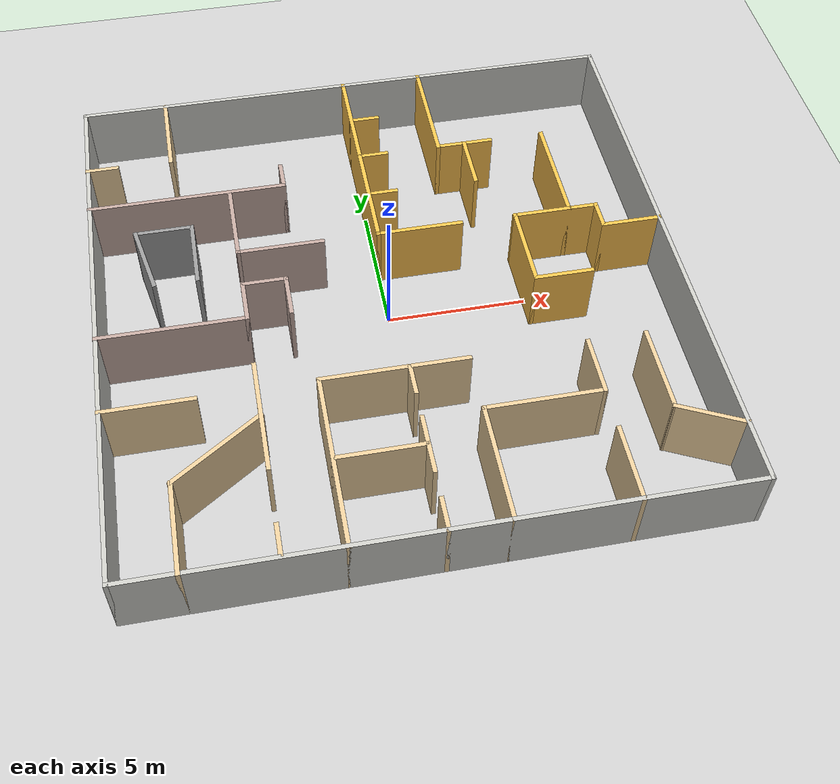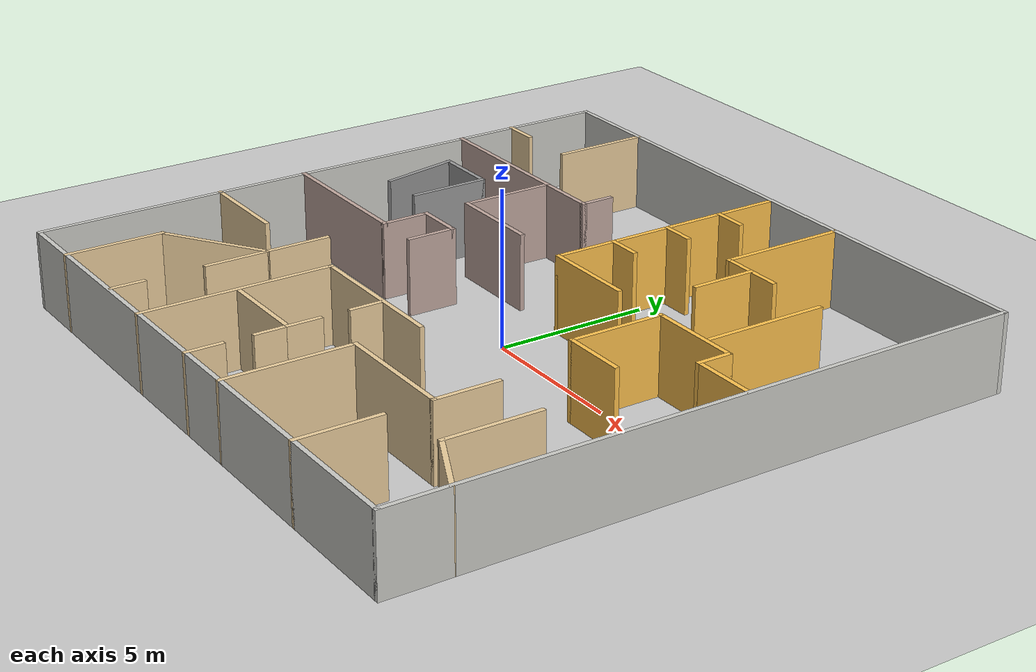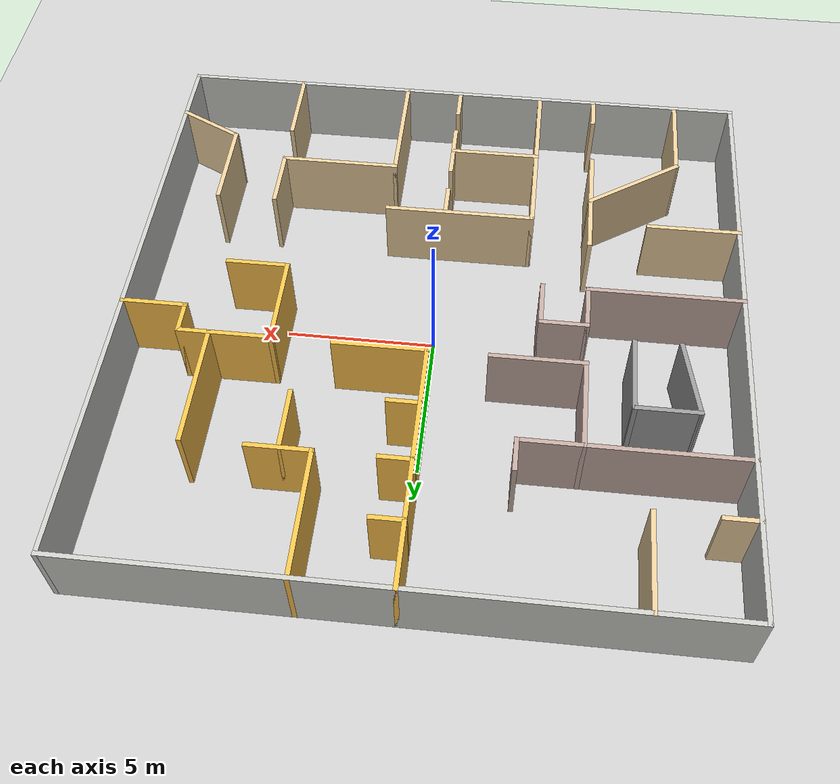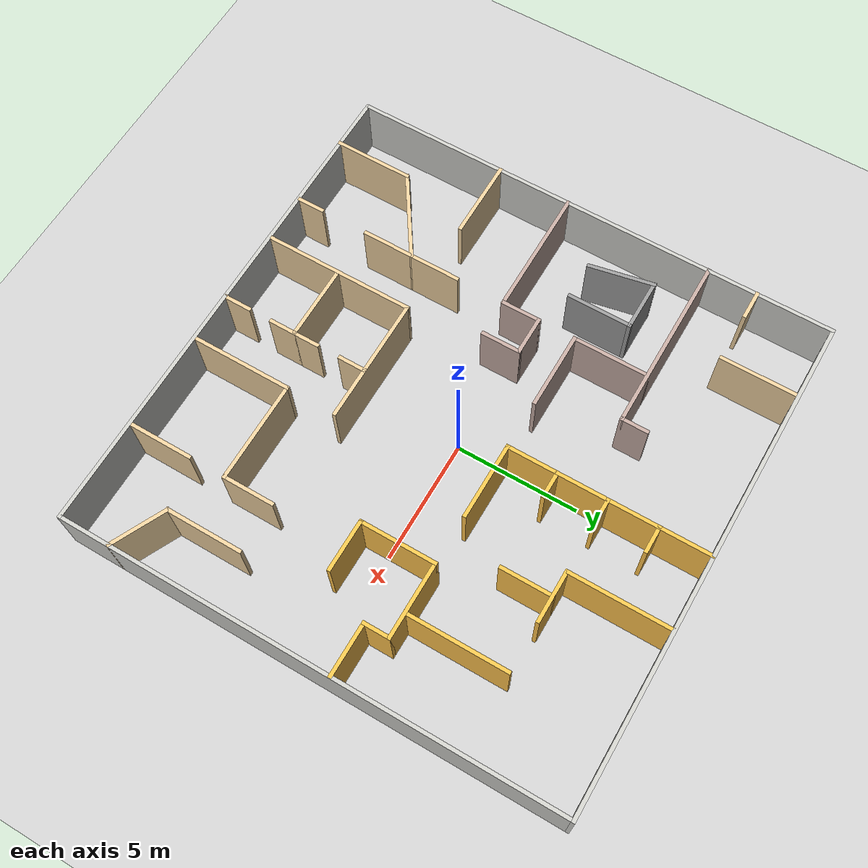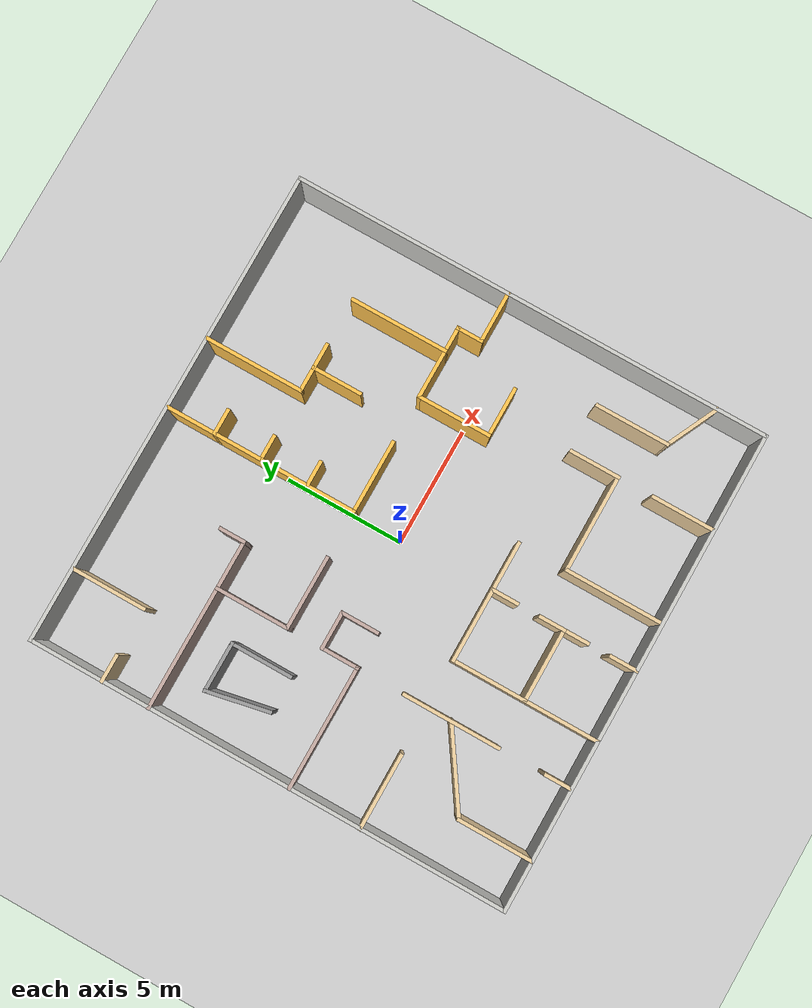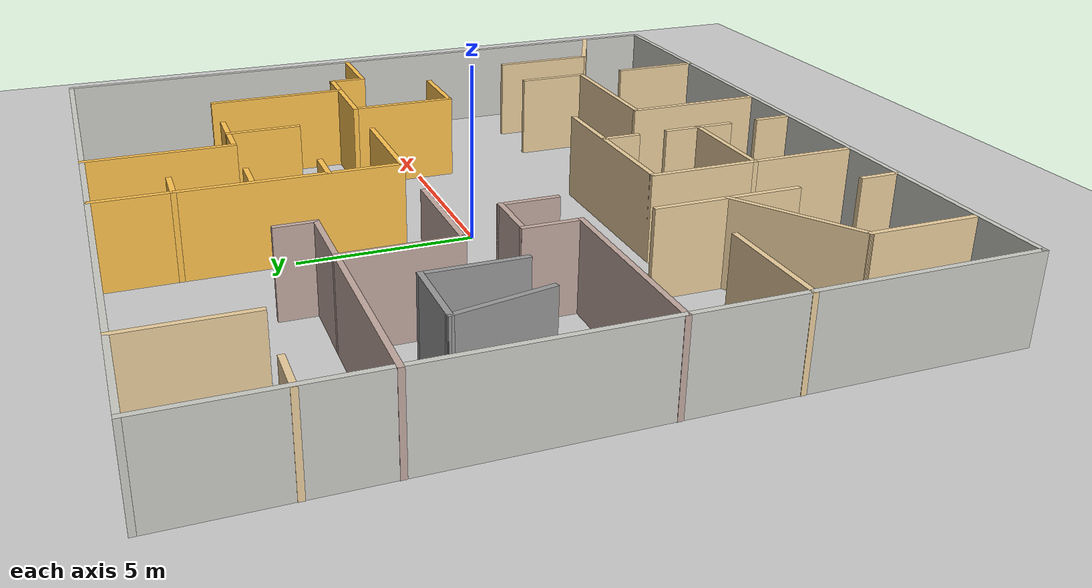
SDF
<sdf version="1.6">
 <world name="default">
  <light name="sun" type="directional">
   <pose>0 0 10 0 -0 0</pose>
   <diffuse>0.8 0.8 0.8 1</diffuse>
   <specular>0.2 0.2 0.2 1</specular>
   <attenuation>
    <range>1000</range>
    <constant>0.9</constant>
    <linear>0.01</linear>
    <quadratic>0.001</quadratic>
   </attenuation>
   <direction>-0.5 0.1 -0.9</direction>
  </light>
  <model name="ground_plane">
   <static>1</static>
   <link name="link">
    <collision name="collision">
     <geometry><plane><normal>0 0 1</normal><size>100 100</size></plane></geometry>
     <surface>
      <contact><collide_bitmask>65535</collide_bitmask></contact>
      <friction><ode><mu>100</mu><mu2>50</mu2></ode></friction>
     </surface>
    </collision>
    <visual name="visual">
     <cast_shadows>0</cast_shadows>
     <geometry><plane><normal>0 0 1</normal><size>100 100</size></plane></geometry>
     <material>
      <script><uri>file://media/materials/scripts/gazebo.material</uri><name>Gazebo/Grey</name></script>
     </material>
    </visual>
   </link>
  </model>
  <gravity>0 0 -9.8</gravity>
  <magnetic_field>6e-06 2.3e-05 -4.2e-05</magnetic_field>
  <atmosphere type="adiabatic"/>
  <physics name="default_physics" default="0" type="ode">
   <max_step_size>0.001</max_step_size>
   <real_time_factor>1</real_time_factor>
   <real_time_update_rate>1000</real_time_update_rate>
  </physics>
  <scene><ambient>0.4 0.4 0.4 1</ambient><background>0.7 0.7 0.7 1</background><shadows>1</shadows></scene>
  <audio><device>default</device></audio>
  <spherical_coordinates>
   <surface_model>EARTH_WGS84</surface_model>
   <latitude_deg>0</latitude_deg>
   <longitude_deg>0</longitude_deg>
   <elevation>0</elevation>
   <heading_deg>0</heading_deg>
  </spherical_coordinates>
  <model name="wall_in">
   <link name="Wall_10">
    <collision name="Wall_10_Collision">
     <geometry><box><size>3.15 0.15 2.5</size></box></geometry>
     <pose>0 0 1.25 0 -0 0</pose>
    </collision>
    <visual name="Wall_10_Visual">
     <pose>0 0 1.25 0 -0 0</pose>
     <geometry><box><size>3.15 0.15 2.5</size></box></geometry>
     <material>
      <script><uri>file://media/materials/scripts/gazebo.material</uri><name>Gazebo/Grey</name></script>
      <ambient>0.760784 0.662745 0.627451 1</ambient>
     </material>
     <meta><layer>0</layer></meta>
    </visual>
    <pose>-5.01256 3.5 0 0 -0 -1.5708</pose>
   </link>
   <link name="Wall_12">
    <collision name="Wall_12_Collision">
     <geometry><box><size>3.15 0.15 2.5</size></box></geometry>
     <pose>0 0 1.25 0 -0 0</pose>
    </collision>
    <visual name="Wall_12_Visual">
     <pose>0 0 1.25 0 -0 0</pose>
     <geometry><box><size>3.15 0.15 2.5</size></box></geometry>
     <material>
      <script><uri>file://media/materials/scripts/gazebo.material</uri><name>Gazebo/Grey</name></script>
      <ambient>0.760784 0.662745 0.627451 1</ambient>
     </material>
     <meta><layer>0</layer></meta>
    </visual>
    <pose>-3.51256 2 0 0 -0 0</pose>
   </link>
   <link name="Wall_14">
    <collision name="Wall_14_Collision">
     <geometry><box><size>2.65 0.15 2.5</size></box></geometry>
     <pose>0 0 1.25 0 -0 0</pose>
    </collision>
    <visual name="Wall_14_Visual">
     <pose>0 0 1.25 0 -0 0</pose>
     <geometry><box><size>2.65 0.15 2.5</size></box></geometry>
     <material>
      <script><uri>file://media/materials/scripts/gazebo.material</uri><name>Gazebo/Grey</name></script>
      <ambient>1 1 1 1</ambient>
     </material>
     <meta><layer>0</layer></meta>
    </visual>
    <pose>-6.51256 2.25 0 0 -0 1.5708</pose>
   </link>
   <link name="Wall_16">
    <collision name="Wall_16_Collision">
     <geometry><box><size>2.15 0.15 2.5</size></box></geometry>
     <pose>0 0 1.25 0 -0 0</pose>
    </collision>
    <visual name="Wall_16_Visual">
     <pose>0 0 1.25 0 -0 0</pose>
     <geometry><box><size>2.15 0.15 2.5</size></box></geometry>
     <material>
      <script><uri>file://media/materials/scripts/gazebo.material</uri><name>Gazebo/Grey</name></script>
      <ambient>1 1 1 1</ambient>
     </material>
     <meta><layer>0</layer></meta>
    </visual>
    <pose>-7.51256 3.5 0 0 -0 3.14159</pose>
   </link>
   <link name="Wall_17">
    <collision name="Wall_17_Collision">
     <geometry><box><size>2.69951 0.15 2.5</size></box></geometry>
     <pose>0 0 1.25 0 -0 0</pose>
    </collision>
    <visual name="Wall_17_Visual">
     <pose>0 0 1.25 0 -0 0</pose>
     <geometry><box><size>2.69951 0.15 2.5</size></box></geometry>
     <material>
      <script><uri>file://media/materials/scripts/gazebo.material</uri><name>Gazebo/Grey</name></script>
      <ambient>1 1 1 1</ambient>
     </material>
     <meta><layer>0</layer></meta>
    </visual>
    <pose>-8.26256 2.25 0 0 -0 -1.3734</pose>
   </link>
   <link name="Wall_19">
    <collision name="Wall_19_Collision">
     <geometry><box><size>5.225 0.15 2.5</size></box></geometry>
     <pose>0 0 1.25 0 -0 0</pose>
    </collision>
    <visual name="Wall_19_Visual">
     <pose>0 0 1.25 0 -0 0</pose>
     <geometry><box><size>5.225 0.15 2.5</size></box></geometry>
     <material>
      <script><uri>file://media/materials/scripts/gazebo.material</uri><name>Gazebo/Grey</name></script>
      <ambient>0.760784 0.662745 0.627451 1</ambient>
     </material>
     <meta><layer>0</layer></meta>
    </visual>
    <pose>-7.55006 -1 0 0 -0 0</pose>
   </link>
   <link name="Wall_2">
    <collision name="Wall_2_Collision">
     <geometry><box><size>3.225 0.15 2.5</size></box></geometry>
     <pose>0 0 1.25 0 -0 0</pose>
    </collision>
    <visual name="Wall_2_Visual">
     <pose>0 0 1.25 0 -0 0</pose>
     <geometry><box><size>3.225 0.15 2.5</size></box></geometry>
     <material>
      <script><uri>file://media/materials/scripts/gazebo.material</uri><name>Gazebo/Grey</name></script>
      <ambient>0.921569 0.807843 0.615686 1</ambient>
     </material>
     <meta><layer>0</layer></meta>
    </visual>
    <pose>-7.01256 8.5375 0 0 -0 -1.5708</pose>
   </link>
   <link name="Wall_21">
    <collision name="Wall_21_Collision">
     <geometry><box><size>1.65 0.15 2.5</size></box></geometry>
     <pose>0 0 1.25 0 -0 0</pose>
    </collision>
    <visual name="Wall_21_Visual">
     <pose>0 0 1.25 0 -0 0</pose>
     <geometry><box><size>1.65 0.15 2.5</size></box></geometry>
     <material>
      <script><uri>file://media/materials/scripts/gazebo.material</uri><name>Gazebo/Grey</name></script>
      <ambient>0.760784 0.662745 0.627451 1</ambient>
     </material>
     <meta><layer>0</layer></meta>
    </visual>
    <pose>-5.01256 -0.25 0 0 -0 1.5708</pose>
   </link>
   <link name="Wall_23">
    <collision name="Wall_23_Collision">
     <geometry><box><size>1.65 0.15 2.5</size></box></geometry>
     <pose>0 0 1.25 0 -0 0</pose>
    </collision>
    <visual name="Wall_23_Visual">
     <pose>0 0 1.25 0 -0 0</pose>
     <geometry><box><size>1.65 0.15 2.5</size></box></geometry>
     <material>
      <script><uri>file://media/materials/scripts/gazebo.material</uri><name>Gazebo/Grey</name></script>
      <ambient>0.760784 0.662745 0.627451 1</ambient>
     </material>
     <meta><layer>0</layer></meta>
    </visual>
    <pose>-4.26256 0.5 0 0 -0 0</pose>
   </link>
   <link name="Wall_25">
    <collision name="Wall_25_Collision">
     <geometry><box><size>1.65 0.15 2.5</size></box></geometry>
     <pose>0 0 1.25 0 -0 0</pose>
    </collision>
    <visual name="Wall_25_Visual">
     <pose>0 0 1.25 0 -0 0</pose>
     <geometry><box><size>1.65 0.15 2.5</size></box></geometry>
     <material>
      <script><uri>file://media/materials/scripts/gazebo.material</uri><name>Gazebo/Grey</name></script>
      <ambient>0.760784 0.662745 0.627451 1</ambient>
     </material>
     <meta><layer>0</layer></meta>
    </visual>
    <pose>-3.51256 -0.25 0 0 -0 -1.5708</pose>
   </link>
   <link name="Wall_29">
    <collision name="Wall_29_Collision">
     <geometry><box><size>3.15 0.15 2.5</size></box></geometry>
     <pose>0 0 1.25 0 -0 0</pose>
    </collision>
    <visual name="Wall_29_Visual">
     <pose>0 0 1.25 0 -0 0</pose>
     <geometry><box><size>3.15 0.15 2.5</size></box></geometry>
     <material>
      <script><uri>file://media/materials/scripts/gazebo.material</uri><name>Gazebo/Grey</name></script>
      <ambient>1 0.764706 0.305882 1</ambient>
     </material>
     <meta><layer>0</layer></meta>
    </visual>
    <pose>1.48744 2 0 0 -0 0</pose>
   </link>
   <link name="Wall_31">
    <collision name="Wall_31_Collision">
     <geometry><box><size>3.15 0.15 2.5</size></box></geometry>
     <pose>0 0 1.25 0 -0 0</pose>
    </collision>
    <visual name="Wall_31_Visual">
     <pose>0 0 1.25 0 -0 0</pose>
     <geometry><box><size>3.15 0.15 2.5</size></box></geometry>
     <material>
      <script><uri>file://media/materials/scripts/gazebo.material</uri><name>Gazebo/Grey</name></script>
      <ambient>1 0.764706 0.305882 1</ambient>
     </material>
     <meta><layer>0</layer></meta>
    </visual>
    <pose>6.48744 2 0 0 -0 0</pose>
   </link>
   <link name="Wall_33">
    <collision name="Wall_33_Collision">
     <geometry><box><size>1.15 0.15 2.5</size></box></geometry>
     <pose>0 0 1.25 0 -0 0</pose>
    </collision>
    <visual name="Wall_33_Visual">
     <pose>0 0 1.25 0 -0 0</pose>
     <geometry><box><size>1.15 0.15 2.5</size></box></geometry>
     <material>
      <script><uri>file://media/materials/scripts/gazebo.material</uri><name>Gazebo/Grey</name></script>
      <ambient>1 0.764706 0.305882 1</ambient>
     </material>
     <meta><layer>0</layer></meta>
    </visual>
    <pose>7.98744 1.5 0 0 -0 -1.5708</pose>
   </link>
   <link name="Wall_35">
    <collision name="Wall_35_Collision">
     <geometry><box><size>2.225 0.15 2.5</size></box></geometry>
     <pose>0 0 1.25 0 -0 0</pose>
    </collision>
    <visual name="Wall_35_Visual">
     <pose>0 0 1.25 0 -0 0</pose>
     <geometry><box><size>2.225 0.15 2.5</size></box></geometry>
     <material>
      <script><uri>file://media/materials/scripts/gazebo.material</uri><name>Gazebo/Grey</name></script>
      <ambient>1 0.764706 0.305882 1</ambient>
     </material>
     <meta><layer>0</layer></meta>
    </visual>
    <pose>9.02494 1 0 0 -0 0</pose>
   </link>
   <link name="Wall_37">
    <collision name="Wall_37_Collision">
     <geometry><box><size>4.15 0.15 2.5</size></box></geometry>
     <pose>0 0 1.25 0 -0 0</pose>
    </collision>
    <visual name="Wall_37_Visual">
     <pose>0 0 1.25 0 -0 0</pose>
     <geometry><box><size>4.15 0.15 2.5</size></box></geometry>
     <material>
      <script><uri>file://media/materials/scripts/gazebo.material</uri><name>Gazebo/Grey</name></script>
      <ambient>1 0.764706 0.305882 1</ambient>
     </material>
     <meta><layer>0</layer></meta>
    </visual>
    <pose>6.98744 4 0 0 -0 1.5708</pose>
   </link>
   <link name="Wall_39">
    <collision name="Wall_39_Collision">
     <geometry><box><size>1.15 0.15 2.5</size></box></geometry>
     <pose>0 0 1.25 0 -0 0</pose>
    </collision>
    <visual name="Wall_39_Visual">
     <pose>0 0 1.25 0 -0 0</pose>
     <geometry><box><size>1.15 0.15 2.5</size></box></geometry>
     <material>
      <script><uri>file://media/materials/scripts/gazebo.material</uri><name>Gazebo/Grey</name></script>
      <ambient>1 0.764706 0.305882 1</ambient>
     </material>
     <meta><layer>0</layer></meta>
    </visual>
    <pose>0.487438 4 0 0 -0 0</pose>
   </link>
   <link name="Wall_4">
    <collision name="Wall_4_Collision">
     <geometry><box><size>1.225 0.15 2.5</size></box></geometry>
     <pose>0 0 1.25 0 -0 0</pose>
    </collision>
    <visual name="Wall_4_Visual">
     <pose>0 0 1.25 0 -0 0</pose>
     <geometry><box><size>1.225 0.15 2.5</size></box></geometry>
     <material>
      <script><uri>file://media/materials/scripts/gazebo.material</uri><name>Gazebo/Grey</name></script>
      <ambient>0.921569 0.807843 0.615686 1</ambient>
     </material>
     <meta><layer>0</layer></meta>
    </visual>
    <pose>-9.55006 7 0 0 -0 0</pose>
   </link>
   <link name="Wall_41">
    <collision name="Wall_41_Collision">
     <geometry><box><size>1.15 0.15 2.5</size></box></geometry>
     <pose>0 0 1.25 0 -0 0</pose>
    </collision>
    <visual name="Wall_41_Visual">
     <pose>0 0 1.25 0 -0 0</pose>
     <geometry><box><size>1.15 0.15 2.5</size></box></geometry>
     <material>
      <script><uri>file://media/materials/scripts/gazebo.material</uri><name>Gazebo/Grey</name></script>
      <ambient>1 0.764706 0.305882 1</ambient>
     </material>
     <meta><layer>0</layer></meta>
    </visual>
    <pose>0.487438 6 0 0 -0 0</pose>
   </link>
   <link name="Wall_43">
    <collision name="Wall_43_Collision">
     <geometry><box><size>1.15 0.15 2.5</size></box></geometry>
     <pose>0 0 1.25 0 -0 0</pose>
    </collision>
    <visual name="Wall_43_Visual">
     <pose>0 0 1.25 0 -0 0</pose>
     <geometry><box><size>1.15 0.15 2.5</size></box></geometry>
     <material>
      <script><uri>file://media/materials/scripts/gazebo.material</uri><name>Gazebo/Grey</name></script>
      <ambient>1 0.764706 0.305882 1</ambient>
     </material>
     <meta><layer>0</layer></meta>
    </visual>
    <pose>0.487438 8 0 0 -0 0</pose>
   </link>
   <link name="Wall_45">
    <collision name="Wall_45_Collision">
     <geometry><box><size>4.225 0.15 2.5</size></box></geometry>
     <pose>0 0 1.25 0 -0 0</pose>
    </collision>
    <visual name="Wall_45_Visual">
     <pose>0 0 1.25 0 -0 0</pose>
     <geometry><box><size>4.225 0.15 2.5</size></box></geometry>
     <material>
      <script><uri>file://media/materials/scripts/gazebo.material</uri><name>Gazebo/Grey</name></script>
      <ambient>1 0.764706 0.305882 1</ambient>
     </material>
     <meta><layer>0</layer></meta>
    </visual>
    <pose>2.98744 8.0375 0 0 -0 -1.5708</pose>
   </link>
   <link name="Wall_47">
    <collision name="Wall_47_Collision">
     <geometry><box><size>2.15 0.15 2.5</size></box></geometry>
     <pose>0 0 1.25 0 -0 0</pose>
    </collision>
    <visual name="Wall_47_Visual">
     <pose>0 0 1.25 0 -0 0</pose>
     <geometry><box><size>2.15 0.15 2.5</size></box></geometry>
     <material>
      <script><uri>file://media/materials/scripts/gazebo.material</uri><name>Gazebo/Grey</name></script>
      <ambient>1 0.764706 0.305882 1</ambient>
     </material>
     <meta><layer>0</layer></meta>
    </visual>
    <pose>3.98744 6 0 0 -0 0</pose>
   </link>
   <link name="Wall_49">
    <collision name="Wall_49_Collision">
     <geometry><box><size>2.15 0.15 2.5</size></box></geometry>
     <pose>0 0 1.25 0 -0 0</pose>
    </collision>
    <visual name="Wall_49_Visual">
     <pose>0 0 1.25 0 -0 0</pose>
     <geometry><box><size>2.15 0.15 2.5</size></box></geometry>
     <material>
      <script><uri>file://media/materials/scripts/gazebo.material</uri><name>Gazebo/Grey</name></script>
      <ambient>1 0.764706 0.305882 1</ambient>
     </material>
     <meta><layer>0</layer></meta>
    </visual>
    <pose>3.98744 5 0 0 -0 -1.5708</pose>
   </link>
   <link name="Wall_51">
    <collision name="Wall_51_Collision">
     <geometry><box><size>3.225 0.15 2.5</size></box></geometry>
     <pose>0 0 1.25 0 -0 0</pose>
    </collision>
    <visual name="Wall_51_Visual">
     <pose>0 0 1.25 0 -0 0</pose>
     <geometry><box><size>3.225 0.15 2.5</size></box></geometry>
     <material>
      <script><uri>file://media/materials/scripts/gazebo.material</uri><name>Gazebo/Grey</name></script>
      <ambient>0.921569 0.807843 0.615686 1</ambient>
     </material>
     <meta><layer>0</layer></meta>
    </visual>
    <pose>-8.55006 -4 0 0 -0 0</pose>
   </link>
   <link name="Wall_53">
    <collision name="Wall_53_Collision">
     <geometry><box><size>4.15 0.15 2.5</size></box></geometry>
     <pose>0 0 1.25 0 -0 0</pose>
    </collision>
    <visual name="Wall_53_Visual">
     <pose>0 0 1.25 0 -0 0</pose>
     <geometry><box><size>4.15 0.15 2.5</size></box></geometry>
     <material>
      <script><uri>file://media/materials/scripts/gazebo.material</uri><name>Gazebo/Grey</name></script>
      <ambient>0.921569 0.807843 0.615686 1</ambient>
     </material>
     <meta><layer>0</layer></meta>
    </visual>
    <pose>-5.01256 -5 0 0 -0 -1.5708</pose>
   </link>
   <link name="Wall_55">
    <collision name="Wall_55_Collision">
     <geometry><box><size>3.75555 0.15 2.5</size></box></geometry>
     <pose>0 0 1.25 0 -0 0</pose>
    </collision>
    <visual name="Wall_55_Visual">
     <pose>0 0 1.25 0 -0 0</pose>
     <geometry><box><size>3.75555 0.15 2.5</size></box></geometry>
     <material>
      <script><uri>file://media/materials/scripts/gazebo.material</uri><name>Gazebo/Grey</name></script>
      <ambient>0.921569 0.807843 0.615686 1</ambient>
     </material>
     <meta><layer>0</layer></meta>
    </visual>
    <pose>-6.51256 -6 0 0 -0 -2.55359</pose>
   </link>
   <link name="Wall_57">
    <collision name="Wall_57_Collision">
     <geometry><box><size>3.225 0.15 2.5</size></box></geometry>
     <pose>0 0 1.25 0 -0 0</pose>
    </collision>
    <visual name="Wall_57_Visual">
     <pose>0 0 1.25 0 -0 0</pose>
     <geometry><box><size>3.225 0.15 2.5</size></box></geometry>
     <material>
      <script><uri>file://media/materials/scripts/gazebo.material</uri><name>Gazebo/Grey</name></script>
      <ambient>0.921569 0.807843 0.615686 1</ambient>
     </material>
     <meta><layer>0</layer></meta>
    </visual>
    <pose>-8.01256 -8.5375 0 0 -0 -1.5708</pose>
   </link>
   <link name="Wall_59">
    <collision name="Wall_59_Collision">
     <geometry><box><size>1.15 0.15 2.5</size></box></geometry>
     <pose>0 0 1.25 0 -0 0</pose>
    </collision>
    <visual name="Wall_59_Visual">
     <pose>0 0 1.25 0 -0 0</pose>
     <geometry><box><size>1.15 0.15 2.5</size></box></geometry>
     <material>
      <script><uri>file://media/materials/scripts/gazebo.material</uri><name>Gazebo/Grey</name></script>
      <ambient>0.921569 0.807843 0.615686 1</ambient>
     </material>
     <meta><layer>0</layer></meta>
    </visual>
    <pose>-5.01256 -9.5 0 0 -0 1.5708</pose>
   </link>
   <link name="Wall_6">
    <collision name="Wall_6_Collision">
     <geometry><box><size>7.225 0.15 2.5</size></box></geometry>
     <pose>0 0 1.25 0 -0 0</pose>
    </collision>
    <visual name="Wall_6_Visual">
     <pose>0 0 1.25 0 -0 0</pose>
     <geometry><box><size>7.225 0.15 2.5</size></box></geometry>
     <material>
      <script><uri>file://media/materials/scripts/gazebo.material</uri><name>Gazebo/Grey</name></script>
      <ambient>0.760784 0.662745 0.627451 1</ambient>
     </material>
     <meta><layer>0</layer></meta>
    </visual>
    <pose>-6.55006 5 0 0 -0 0</pose>
   </link>
   <link name="Wall_61">
    <collision name="Wall_61_Collision">
     <geometry><box><size>1.15 0.15 2.5</size></box></geometry>
     <pose>0 0 1.25 0 -0 0</pose>
    </collision>
    <visual name="Wall_61_Visual">
     <pose>0 0 1.25 0 -0 0</pose>
     <geometry><box><size>1.15 0.15 2.5</size></box></geometry>
     <material>
      <script><uri>file://media/materials/scripts/gazebo.material</uri><name>Gazebo/Grey</name></script>
      <ambient>0.760784 0.662745 0.627451 1</ambient>
     </material>
     <meta><layer>0</layer></meta>
    </visual>
    <pose>-3.01256 5.5 0 0 -0 1.5708</pose>
   </link>
   <link name="Wall_63">
    <collision name="Wall_63_Collision">
     <geometry><box><size>6.26 0.15 2.5</size></box></geometry>
     <pose>0 0 1.25 0 -0 0</pose>
    </collision>
    <visual name="Wall_63_Visual">
     <pose>0 0 1.25 0 -0 0</pose>
     <geometry><box><size>6.26 0.15 2.5</size></box></geometry>
     <material>
      <script><uri>file://media/materials/scripts/gazebo.material</uri><name>Gazebo/Grey</name></script>
      <ambient>0.921569 0.807843 0.615686 1</ambient>
     </material>
     <meta><layer>0</layer></meta>
    </visual>
    <pose>-3.01256 -7.02 0 0 -0 1.5708</pose>
   </link>
   <link name="Wall_65">
    <collision name="Wall_65_Collision">
     <geometry><box><size>5.15 0.15 2.5</size></box></geometry>
     <pose>0 0 1.25 0 -0 0</pose>
    </collision>
    <visual name="Wall_65_Visual">
     <pose>0 0 1.25 0 -0 0</pose>
     <geometry><box><size>5.15 0.15 2.5</size></box></geometry>
     <material>
      <script><uri>file://media/materials/scripts/gazebo.material</uri><name>Gazebo/Grey</name></script>
      <ambient>0.921569 0.807843 0.615686 1</ambient>
     </material>
     <meta><layer>0</layer></meta>
    </visual>
    <pose>-0.512562 -3.965 0 0 -0 0</pose>
   </link>
   <link name="Wall_67">
    <collision name="Wall_67_Collision">
     <geometry><box><size>3.15 0.15 2.5</size></box></geometry>
     <pose>0 0 1.25 0 -0 0</pose>
    </collision>
    <visual name="Wall_67_Visual">
     <pose>0 0 1.25 0 -0 0</pose>
     <geometry><box><size>3.15 0.15 2.5</size></box></geometry>
     <material>
      <script><uri>file://media/materials/scripts/gazebo.material</uri><name>Gazebo/Grey</name></script>
      <ambient>0.921569 0.807843 0.615686 1</ambient>
     </material>
     <meta><layer>0</layer></meta>
    </visual>
    <pose>-1.51256 -7 0 0 -0 0</pose>
   </link>
   <link name="Wall_69">
    <collision name="Wall_69_Collision">
     <geometry><box><size>1.15 0.15 2.5</size></box></geometry>
     <pose>0 0 1.25 0 -0 0</pose>
    </collision>
    <visual name="Wall_69_Visual">
     <pose>0 0 1.25 0 -0 0</pose>
     <geometry><box><size>1.15 0.15 2.5</size></box></geometry>
     <material>
      <script><uri>file://media/materials/scripts/gazebo.material</uri><name>Gazebo/Grey</name></script>
      <ambient>0.921569 0.807843 0.615686 1</ambient>
     </material>
     <meta><layer>0</layer></meta>
    </visual>
    <pose>-0.012562 -7.5 0 0 -0 -1.5708</pose>
   </link>
   <link name="Wall_71">
    <collision name="Wall_71_Collision">
     <geometry><box><size>1.15 0.15 2.5</size></box></geometry>
     <pose>0 0 1.25 0 -0 0</pose>
    </collision>
    <visual name="Wall_71_Visual">
     <pose>0 0 1.25 0 -0 0</pose>
     <geometry><box><size>1.15 0.15 2.5</size></box></geometry>
     <material>
      <script><uri>file://media/materials/scripts/gazebo.material</uri><name>Gazebo/Grey</name></script>
      <ambient>0.921569 0.807843 0.615686 1</ambient>
     </material>
     <meta><layer>0</layer></meta>
    </visual>
    <pose>-0.012562 -6.5 0 0 -0 1.5708</pose>
   </link>
   <link name="Wall_73">
    <collision name="Wall_73_Collision">
     <geometry><box><size>1.15 0.15 2.5</size></box></geometry>
     <pose>0 0 1.25 0 -0 0</pose>
    </collision>
    <visual name="Wall_73_Visual">
     <pose>0 0 1.25 0 -0 0</pose>
     <geometry><box><size>1.15 0.15 2.5</size></box></geometry>
     <material>
      <script><uri>file://media/materials/scripts/gazebo.material</uri><name>Gazebo/Grey</name></script>
      <ambient>0.921569 0.807843 0.615686 1</ambient>
     </material>
     <meta><layer>0</layer></meta>
    </visual>
    <pose>-0.012562 -4.5 0 0 -0 -1.5708</pose>
   </link>
   <link name="Wall_75">
    <collision name="Wall_75_Collision">
     <geometry><box><size>1.225 0.15 2.5</size></box></geometry>
     <pose>0 0 1.25 0 -0 0</pose>
    </collision>
    <visual name="Wall_75_Visual">
     <pose>0 0 1.25 0 -0 0</pose>
     <geometry><box><size>1.225 0.15 2.5</size></box></geometry>
     <material>
      <script><uri>file://media/materials/scripts/gazebo.material</uri><name>Gazebo/Grey</name></script>
      <ambient>0.921569 0.807843 0.615686 1</ambient>
     </material>
     <meta><layer>0</layer></meta>
    </visual>
    <pose>-0.012562 -9.5375 0 0 -0 1.5708</pose>
   </link>
   <link name="Wall_77">
    <collision name="Wall_77_Collision">
     <geometry><box><size>4.225 0.15 2.5</size></box></geometry>
     <pose>0 0 1.25 0 -0 0</pose>
    </collision>
    <visual name="Wall_77_Visual">
     <pose>0 0 1.25 0 -0 0</pose>
     <geometry><box><size>4.225 0.15 2.5</size></box></geometry>
     <material>
      <script><uri>file://media/materials/scripts/gazebo.material</uri><name>Gazebo/Grey</name></script>
      <ambient>0.921569 0.807843 0.615686 1</ambient>
     </material>
     <meta><layer>0</layer></meta>
    </visual>
    <pose>1.98744 -8.0375 0 0 -0 1.5708</pose>
   </link>
   <link name="Wall_79">
    <collision name="Wall_79_Collision">
     <geometry><box><size>4.15 0.15 2.5</size></box></geometry>
     <pose>0 0 1.25 0 -0 0</pose>
    </collision>
    <visual name="Wall_79_Visual">
     <pose>0 0 1.25 0 -0 0</pose>
     <geometry><box><size>4.15 0.15 2.5</size></box></geometry>
     <material>
      <script><uri>file://media/materials/scripts/gazebo.material</uri><name>Gazebo/Grey</name></script>
      <ambient>0.921569 0.807843 0.615686 1</ambient>
     </material>
     <meta><layer>0</layer></meta>
    </visual>
    <pose>3.98744 -6 0 0 -0 0</pose>
   </link>
   <link name="Wall_8">
    <collision name="Wall_8_Collision">
     <geometry><box><size>8.225 0.15 2.5</size></box></geometry>
     <pose>0 0 1.25 0 -0 0</pose>
    </collision>
    <visual name="Wall_8_Visual">
     <pose>0 0 1.25 0 -0 0</pose>
     <geometry><box><size>8.225 0.15 2.5</size></box></geometry>
     <material>
      <script><uri>file://media/materials/scripts/gazebo.material</uri><name>Gazebo/Grey</name></script>
      <ambient>1 0.764706 0.305882 1</ambient>
     </material>
     <meta><layer>0</layer></meta>
    </visual>
    <pose>-0.012562 6.0375 0 0 -0 -1.5708</pose>
   </link>
   <link name="Wall_81">
    <collision name="Wall_81_Collision">
     <geometry><box><size>2.725 0.15 2.5</size></box></geometry>
     <pose>0 0 1.25 0 -0 0</pose>
    </collision>
    <visual name="Wall_81_Visual">
     <pose>0 0 1.25 0 -0 0</pose>
     <geometry><box><size>2.725 0.15 2.5</size></box></geometry>
     <material>
      <script><uri>file://media/materials/scripts/gazebo.material</uri><name>Gazebo/Grey</name></script>
      <ambient>0.921569 0.807843 0.615686 1</ambient>
     </material>
     <meta><layer>0</layer></meta>
    </visual>
    <pose>5.98744 -8.7875 0 0 -0 1.5708</pose>
   </link>
   <link name="Wall_83">
    <collision name="Wall_83_Collision">
     <geometry><box><size>2.45339 0.15 2.5</size></box></geometry>
     <pose>0 0 1.25 0 -0 0</pose>
    </collision>
    <visual name="Wall_83_Visual">
     <pose>0 0 1.25 0 -0 0</pose>
     <geometry><box><size>2.45339 0.15 2.5</size></box></geometry>
     <material>
      <script><uri>file://media/materials/scripts/gazebo.material</uri><name>Gazebo/Grey</name></script>
      <ambient>0.921569 0.807843 0.615686 1</ambient>
     </material>
     <meta><layer>0</layer></meta>
    </visual>
    <pose>9.02494 -7.5 0 0 -0 2.69251</pose>
   </link>
   <link name="Wall_85">
    <collision name="Wall_85_Collision">
     <geometry><box><size>3.15 0.15 2.5</size></box></geometry>
     <pose>0 0 1.25 0 -0 0</pose>
    </collision>
    <visual name="Wall_85_Visual">
     <pose>0 0 1.25 0 -0 0</pose>
     <geometry><box><size>3.15 0.15 2.5</size></box></geometry>
     <material>
      <script><uri>file://media/materials/scripts/gazebo.material</uri><name>Gazebo/Grey</name></script>
      <ambient>0.921569 0.807843 0.615686 1</ambient>
     </material>
     <meta><layer>0</layer></meta>
    </visual>
    <pose>7.98744 -5.5 0 0 -0 1.5708</pose>
   </link>
   <link name="Wall_87">
    <collision name="Wall_87_Collision">
     <geometry><box><size>2.15 0.15 2.5</size></box></geometry>
     <pose>0 0 1.25 0 -0 0</pose>
    </collision>
    <visual name="Wall_87_Visual">
     <pose>0 0 1.25 0 -0 0</pose>
     <geometry><box><size>2.15 0.15 2.5</size></box></geometry>
     <material>
      <script><uri>file://media/materials/scripts/gazebo.material</uri><name>Gazebo/Grey</name></script>
      <ambient>0.921569 0.807843 0.615686 1</ambient>
     </material>
     <meta><layer>0</layer></meta>
    </visual>
    <pose>5.98744 -5 0 0 -0 1.5708</pose>
   </link>
   <link name="Wall_89">
    <collision name="Wall_89_Collision">
     <geometry><box><size>3.15 0.15 2.5</size></box></geometry>
     <pose>0 0 1.25 0 -0 0</pose>
    </collision>
    <visual name="Wall_89_Visual">
     <pose>0 0 1.25 0 -0 0</pose>
     <geometry><box><size>3.15 0.15 2.5</size></box></geometry>
     <material>
      <script><uri>file://media/materials/scripts/gazebo.material</uri><name>Gazebo/Grey</name></script>
      <ambient>1 0.764706 0.305882 1</ambient>
     </material>
     <meta><layer>0</layer></meta>
    </visual>
    <pose>4.98744 0.5 0 0 -0 -1.5708</pose>
   </link>
   <link name="Wall_91">
    <collision name="Wall_91_Collision">
     <geometry><box><size>2.15 0.15 2.5</size></box></geometry>
     <pose>0 0 1.25 0 -0 0</pose>
    </collision>
    <visual name="Wall_91_Visual">
     <pose>0 0 1.25 0 -0 0</pose>
     <geometry><box><size>2.15 0.15 2.5</size></box></geometry>
     <material>
      <script><uri>file://media/materials/scripts/gazebo.material</uri><name>Gazebo/Grey</name></script>
      <ambient>1 0.764706 0.305882 1</ambient>
     </material>
     <meta><layer>0</layer></meta>
    </visual>
    <pose>5.98744 -1 0 0 -0 0</pose>
   </link>
   <static>1</static>
  </model>
  <model name="out_wall">
   <link name="Wall_0">
    <collision name="Wall_0_Collision">
     <geometry><box><size>20.3 0.15 2.5</size></box></geometry>
     <pose>0 0 1.25 0 -0 0</pose>
    </collision>
    <visual name="Wall_0_Visual">
     <pose>0 0 1.25 0 -0 0</pose>
     <geometry><box><size>20.3 0.15 2.5</size></box></geometry>
     <material>
      <script><uri>file://media/materials/scripts/gazebo.material</uri><name>Gazebo/CeilingTiled</name></script>
      <ambient>0.760784 0.662745 0.627451 1</ambient>
     </material>
     <meta><layer>0</layer></meta>
    </visual>
    <pose>-10.075 0 0 0 -0 -1.5708</pose>
   </link>
   <link name="Wall_2">
    <collision name="Wall_2_Collision">
     <geometry><box><size>20.3 0.15 2.5</size></box></geometry>
     <pose>0 0 1.25 0 -0 0</pose>
    </collision>
    <visual name="Wall_2_Visual">
     <pose>0 0 1.25 0 -0 0</pose>
     <geometry><box><size>20.3 0.15 2.5</size></box></geometry>
     <material>
      <script><uri>file://media/materials/scripts/gazebo.material</uri><name>Gazebo/CeilingTiled</name></script>
      <ambient>0.921569 0.807843 0.615686 1</ambient>
     </material>
     <meta><layer>0</layer></meta>
    </visual>
    <pose>0 -10.075 0 0 -0 0</pose>
   </link>
   <link name="Wall_4">
    <collision name="Wall_4_Collision">
     <geometry><box><size>20.3 0.15 2.5</size></box></geometry>
     <pose>0 0 1.25 0 -0 0</pose>
    </collision>
    <visual name="Wall_4_Visual">
     <pose>0 0 1.25 0 -0 0</pose>
     <geometry><box><size>20.3 0.15 2.5</size></box></geometry>
     <material>
      <script><uri>file://media/materials/scripts/gazebo.material</uri><name>Gazebo/CeilingTiled</name></script>
      <ambient>1 0.764706 0.305882 1</ambient>
     </material>
     <meta><layer>0</layer></meta>
    </visual>
    <pose>10.075 0 0 0 -0 1.5708</pose>
   </link>
   <link name="Wall_6">
    <collision name="Wall_6_Collision">
     <geometry><box><size>20.3 0.15 2.5</size></box></geometry>
     <pose>0 0 1.25 0 -0 0</pose>
    </collision>
    <visual name="Wall_6_Visual">
     <pose>0 0 1.25 0 -0 0</pose>
     <geometry><box><size>20.3 0.15 2.5</size></box></geometry>
     <material>
      <script><uri>file://media/materials/scripts/gazebo.material</uri><name>Gazebo/CeilingTiled</name></script>
      <ambient>1 1 1 1</ambient>
     </material>
     <meta><layer>0</layer></meta>
    </visual>
    <pose>0 10.075 0 0 -0 3.14159</pose>
   </link>
   <static>1</static>
  </model>
 </world>
</sdf>
